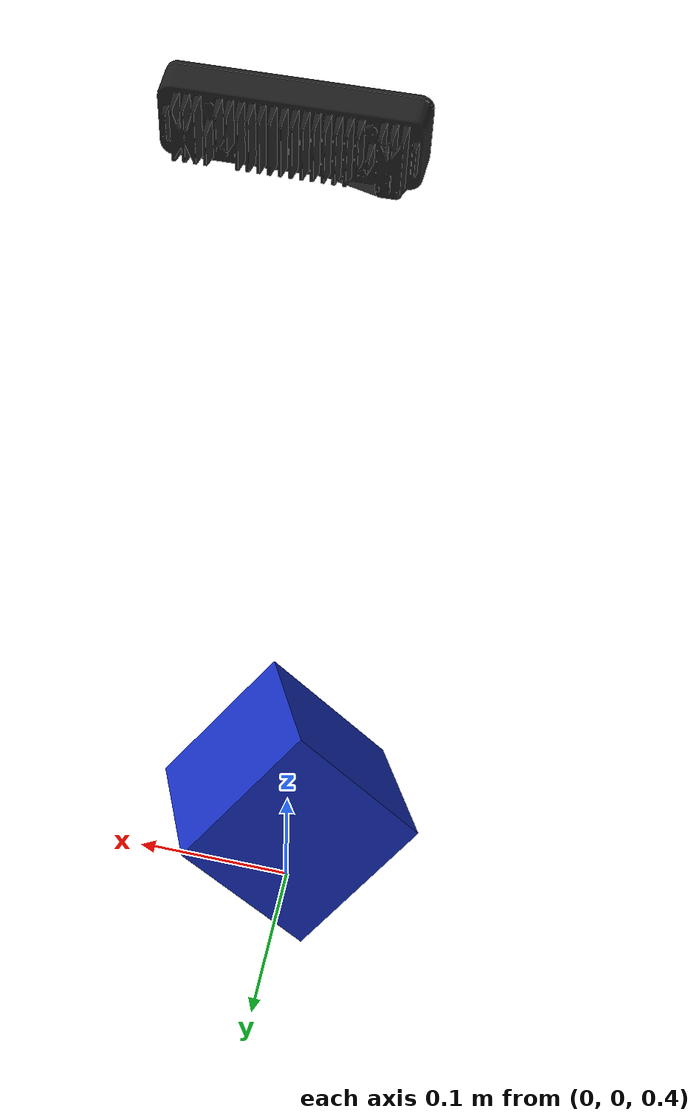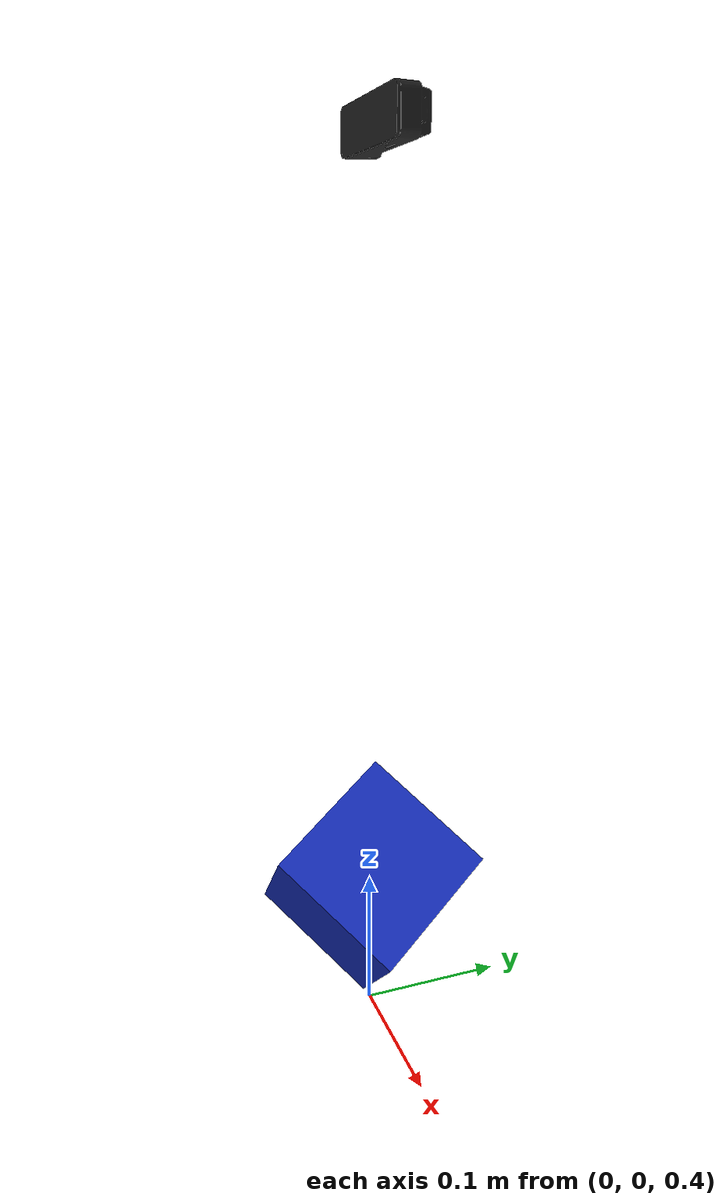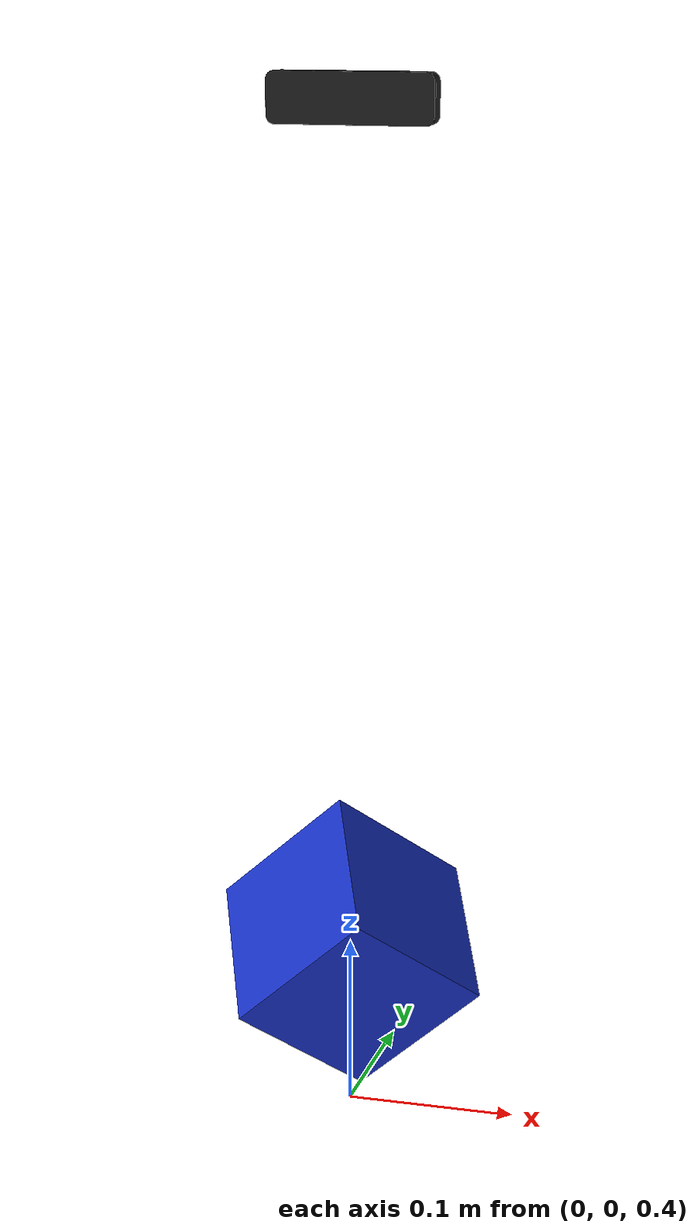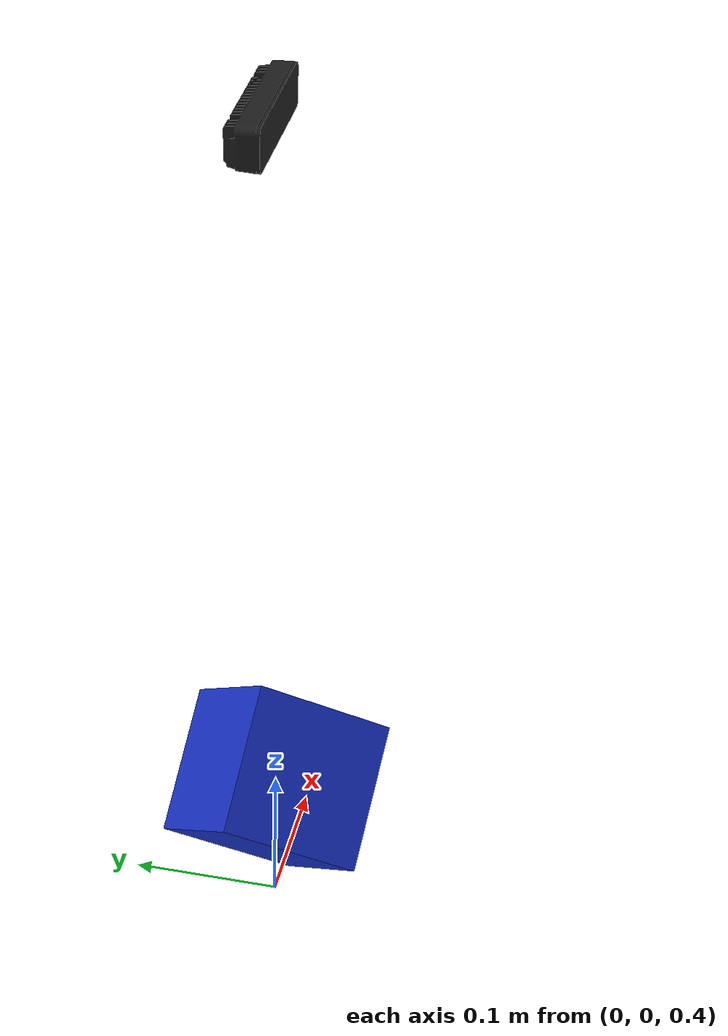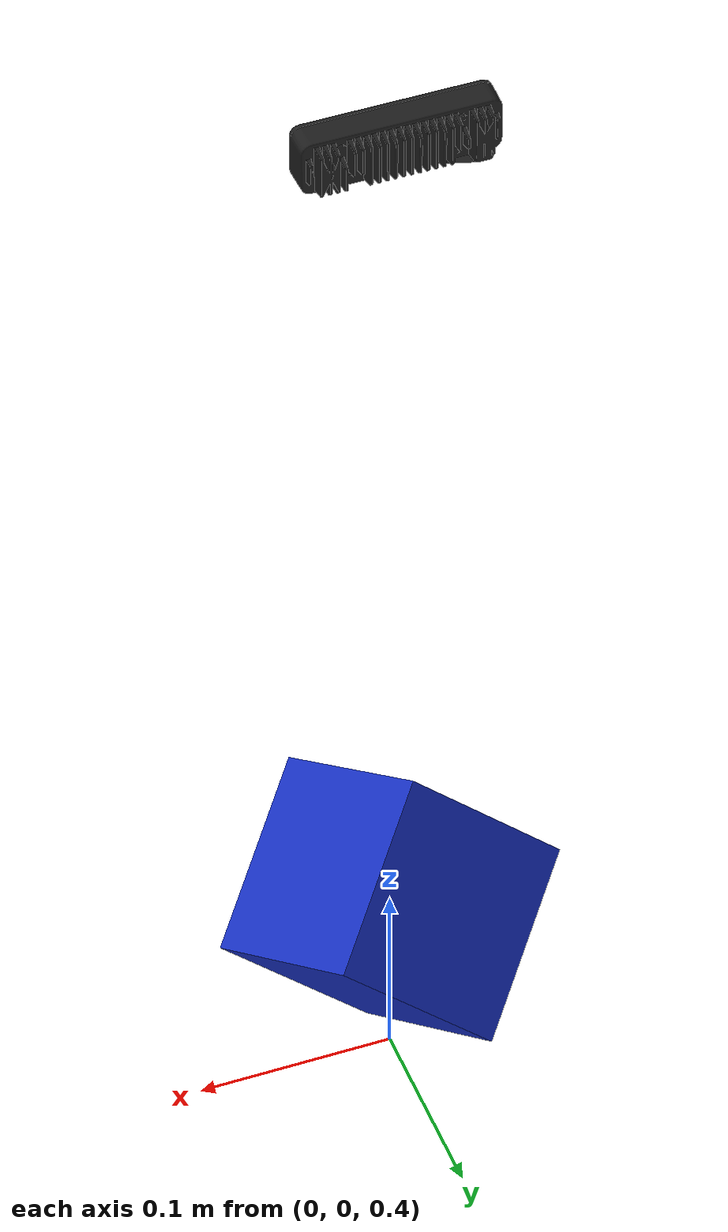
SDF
<?xml version="1.0"?>
<sdf version="1.10">
  <world name="table">
    <gravity>0 0 -9.8000000000000007</gravity>
    <magnetic_field>5.5644999999999998e-06 2.2875799999999999e-05 -4.2388400000000002e-05</magnetic_field>
    <atmosphere type="adiabatic"/>
    <physics type="ode">
      <max_step_size>0.001</max_step_size>
      <real_time_factor>1</real_time_factor>
      <real_time_update_rate>1000</real_time_update_rate>
    </physics>
    <plugin filename="gz-sim-physics-system" name="gz::sim::systems::Physics"/>
    <plugin filename="gz-sim-user-commands-system" name="gz::sim::systems::UserCommands"/>
    <plugin filename="gz-sim-scene-broadcaster-system" name="gz::sim::systems::SceneBroadcaster"/>
    <plugin filename="gz-sim-sensors-system" name="gz::sim::systems::Sensors">
      <render_engine>ogre2</render_engine>
    </plugin>
    <light name="sun" type="directional">
      <pose>0 0 10 0 0 0</pose>
      <diffuse>1 1 1 1</diffuse>
      <specular>0.1 0.1 0.1 1</specular>
      <direction>-0.5 0.2 -1</direction>
      <cast_shadows>true</cast_shadows>
    </light>
    <scene>
      <ambient>0.400000006 0.400000006 0.400000006 1</ambient>
      <background>0.699999988 0.699999988 0.699999988 1</background>
      <shadows>true</shadows>
    </scene>
    <model name="cube">
      <static>true</static>
      <pose>0 0 0.5 0.61548 0.61548 0.785398</pose>
      <link name="link">
        <inertial>
          <mass>1.0</mass>
          <inertia>
            <ixx>0.01</ixx>
            <iyy>0.01</iyy>
            <izz>0.01</izz>
          </inertia>
        </inertial>
        <collision name="collision">
          <geometry>
            <box>
              <size>0.1 0.1 0.1</size>
            </box>
          </geometry>
        </collision>
        <visual name="visual">
          <geometry>
            <box>
              <size>0.1 0.1 0.1</size>
            </box>
          </geometry>
          <material>
            <ambient>0.1 0.2 0.8 1</ambient>
            <diffuse>0.1 0.2 0.8 1</diffuse>
            <specular>0.05 0.05 0.05 1</specular>
          </material>
        </visual>
      </link>
    </model>
    <include>
      <uri>model://oakd_pro</uri>
      <static>true</static>
      <pose>0 0 1 3.14 0 0</pose>
    </include>
  </world>
</sdf>

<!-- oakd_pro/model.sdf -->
<sdf version="1.9">
  <model name="oakd_pro">
    <pose>0 0 0 0 0 0</pose>
    <static>false</static>
    <link name="oakd_pro_link">
      <pose>0 0 0 0 0 0</pose>
      <inertial>
        <mass>0.091</mass>
        <inertia>
          <ixx>0.0000105762</ixx>
          <ixy>0.0</ixy>
          <ixz>0.0</ixz>
          <iyy>0.0000753284</iyy>
          <iyz>0.0</iyz>
          <izz>0.0000779510</izz>
        </inertia>
      </inertial>
      <visual name="oakd_pro_visual">
        <geometry>
          <mesh>
            <uri>meshes/OAK-D-PRO.glb</uri>
          </mesh>
        </geometry>
        <material>
          <ambient>0.05 0.05 0.05 1</ambient>
          <diffuse>0.12 0.12 0.12 1</diffuse>
          <specular>0.02 0.02 0.02 1</specular>
        </material>
      </visual>
      <collision name="oakd_pro_collision">
        <geometry>
          <box>
            <size>0.097 0.0295 0.0229</size>
          </box>
        </geometry>
      </collision>
      <sensor name="oakd_pro_left" type="camera">
        <pose>0.0375 0 0 0 -1.5708 -1.5708</pose>
        <topic>oakd_pro/left/image</topic>
        <update_rate>30</update_rate>
        <camera>
          <horizontal_fov>1.3963</horizontal_fov>
          <image>
            <width>1280</width>
            <height>800</height>
            <format>L8</format>
          </image>
          <clip>
            <near>0.3</near>
            <far>35</far>
          </clip>
        </camera>
      </sensor>
      <sensor name="oakd_pro_right" type="camera">
        <pose>-0.0375 0 0 0 -1.5708 -1.5708</pose>
        <topic>oakd_pro/right/image</topic>
        <update_rate>30</update_rate>
        <camera>
          <horizontal_fov>1.3963</horizontal_fov>
          <image>
            <width>1280</width>
            <height>800</height>
            <format>L8</format>
          </image>
          <clip>
            <near>0.3</near>
            <far>35</far>
          </clip>
        </camera>
      </sensor>
      <sensor name="oakd_pro_rgb" type="camera">
        <pose>0 0 0 0 -1.5708 -1.5708</pose>
        <topic>oakd_pro/rgb/image</topic>
        <update_rate>30</update_rate>
        <camera>
          <horizontal_fov>1.1519</horizontal_fov>
          <image>
            <width>1920</width>
            <height>1440</height>
            <format>R8G8B8</format>
          </image>
          <clip>
            <near>0.02</near>
            <far>300</far>
          </clip>
        </camera>
      </sensor>
    </link>
  </model>
</sdf>
